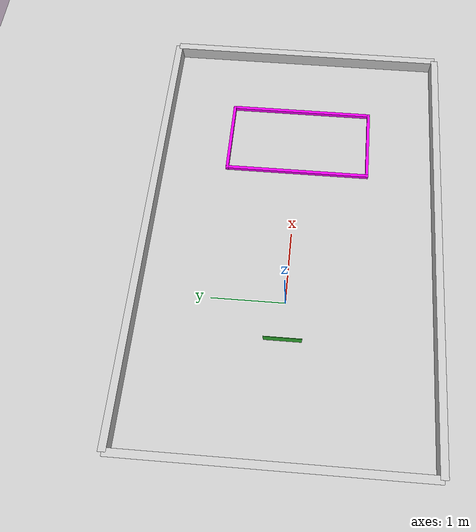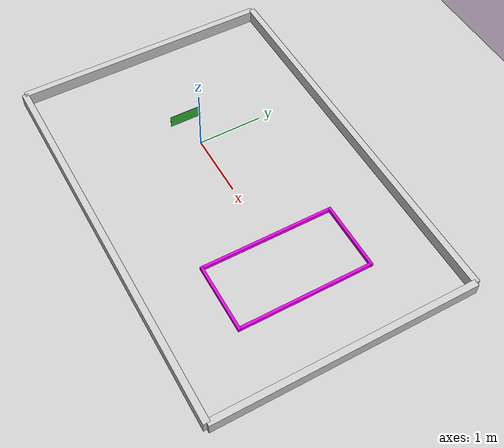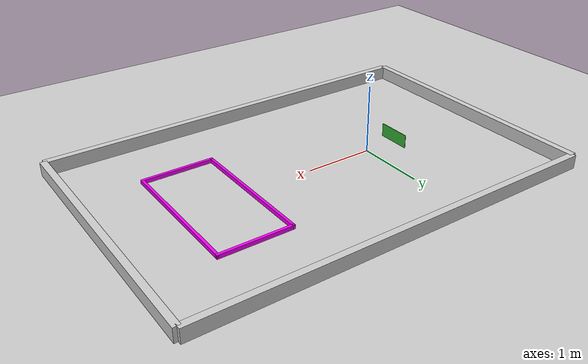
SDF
<?xml version="1.0" ?>
<sdf version="1.6">
  <world name="habitacio">
    <include>
      <uri>model://sun</uri>
    </include>
    <include>
      <uri>model://ground_plane</uri>
    </include>

    <!-- Parets de l'habitació -->
    <model name="parets">
      <static>true</static>

      <!-- Paret 1 (llarga, 6 m) -->
      <link name="paret_1">
        <collision name="collision">
          <geometry>
            <box>
              <size>6 0.1 0.2</size>
            </box>
          </geometry>
        </collision>
        <visual name="visual">
          <geometry>
            <box>
              <size>6 0.1 0.2</size>
            </box>
          </geometry>
          <material>
            <ambient>0.8 0.8 0.8 1</ambient>
          </material>
        </visual>
        <pose>1 -2 0.101 0 0 0</pose>
      </link>

      <!-- Paret 2 (llarga, 6 m) -->
      <link name="paret_2">
        <collision name="collision">
          <geometry>
            <box>
              <size>6 0.1 0.2</size>
            </box>
          </geometry>
        </collision>
        <visual name="visual">
          <geometry>
            <box>
              <size>6 0.1 0.2</size>
            </box>
          </geometry>
          <material>
            <ambient>0.8 0.8 0.8 1</ambient>
          </material>
        </visual>
        <pose>1 2 0.101 0 0 0</pose>
      </link>

      <!-- Paret 3 (curta, 4 m) -->
      <link name="paret_3">
        <collision name="collision">
          <geometry>
            <box>
              <size>0.1 4 0.2</size>
            </box>
          </geometry>
        </collision>
        <visual name="visual">
          <geometry>
            <box>
              <size>0.1 4 0.2</size>
            </box>
          </geometry>
          <material>
            <ambient>0.8 0.8 0.8 1</ambient>
          </material>
        </visual>
        <pose>-2 0 0.101 0 0 0</pose>
      </link>

      <!-- Paret 4 (curta, 4 m) -->
      <link name="paret_4">
        <collision name="collision">
          <geometry>
            <box>
              <size>0.1 4 0.2</size>
            </box>
          </geometry>
        </collision>
        <visual name="visual">
          <geometry>
            <box>
              <size>0.1 4 0.2</size>
            </box>
          </geometry>
          <material>
            <ambient>0.8 0.8 0.8 1</ambient>
          </material>
        </visual>
        <pose>4 0 0.101 0 0 0</pose>
      </link>
    </model>

    <!-- Habitació interior -->
    <model name="habitacio_interior">
      <static>true</static>

      <!-- Paret interior 1 -->
      <link name="paret_interior_1">
        <visual name="visual">
          <geometry>
            <box>
              <size>1.08 0.04 0.1</size>
            </box>
          </geometry>
          <material>
            <ambient>1 0 1 1</ambient>
          </material>
        </visual>
        <pose>2.5 1.02 0 0 0 0</pose>
      </link>

      <!-- Paret interior 2 -->
      <link name="paret_interior_2">
        <visual name="visual">
          <geometry>
            <box>
              <size>1.08 0.04 0.1</size>
            </box>
          </geometry>
          <material>
            <ambient>1 0 1 1</ambient>
          </material>
        </visual>
        <pose>2.5 -1.02 0 0 0 0</pose>
      </link>

      <!-- Paret interior 3 -->
      <link name="paret_interior_3">
        <visual name="visual">
          <geometry>
            <box>
              <size>0.04 2.08 0.1</size>
            </box>
          </geometry>
          <material>
            <ambient>1 0 1 1</ambient>
          </material>
        </visual>
        <pose>1.98 0 0 0 0 0</pose>
      </link>

      <!-- Paret interior 4 -->
      <link name="paret_interior_4">
        <visual name="visual">
          <geometry>
            <box>
              <size>0.04 2.08 0.1</size>
            </box>
          </geometry>
          <material>
            <ambient>1 0 1 1</ambient>
          </material>
        </visual>
        <pose>3.02 0 0 0 0 0</pose>
      </link>
    </model>

    <!-- Nova placa -->
    <model name="placa">
      <static>true</static>
      <link name="placa">
        <collision name="collision">
          <geometry>
            <box>
              <size>0.005 0.5 0.2</size>
            </box>
          </geometry>
        </collision>
        <visual name="visual">
          <geometry>
            <box>
              <size>0.005 0.5 0.2</size>
            </box>
          </geometry>
          <material>
            <ambient>0.2 0.7 0.2 1</ambient>
          </material>
        </visual>
        <!-- Girar 90 graus al voltant de l'eix Z -->
        <pose>-0.5 0 0.101 0 0 0</pose>
      </link>
    </model>
  </world>
</sdf>
